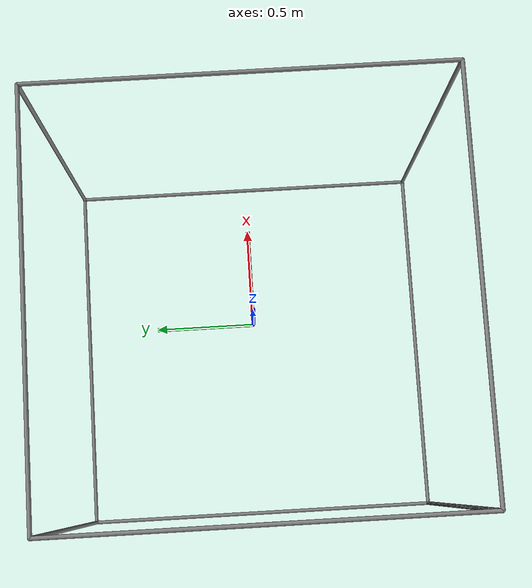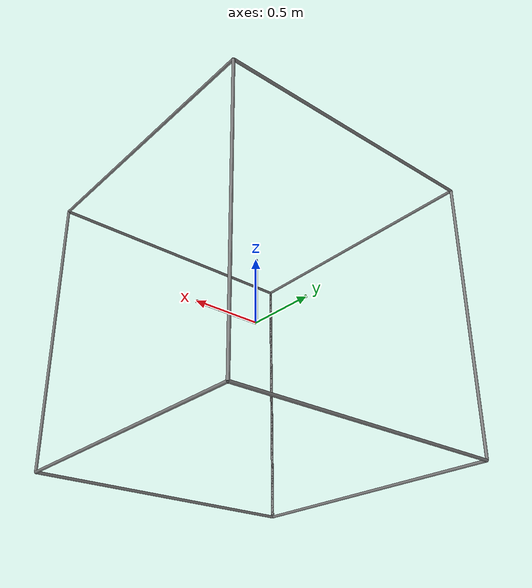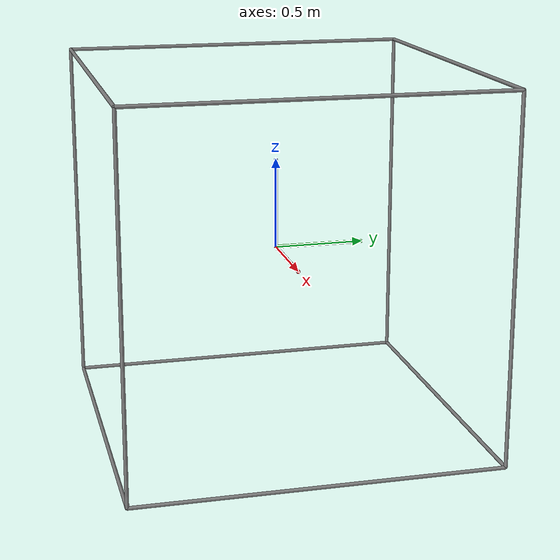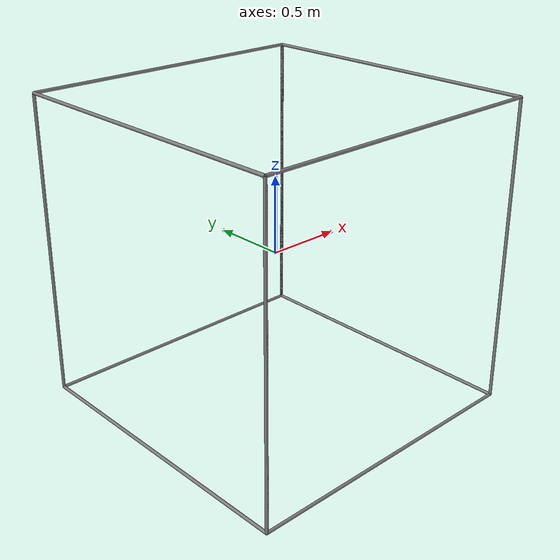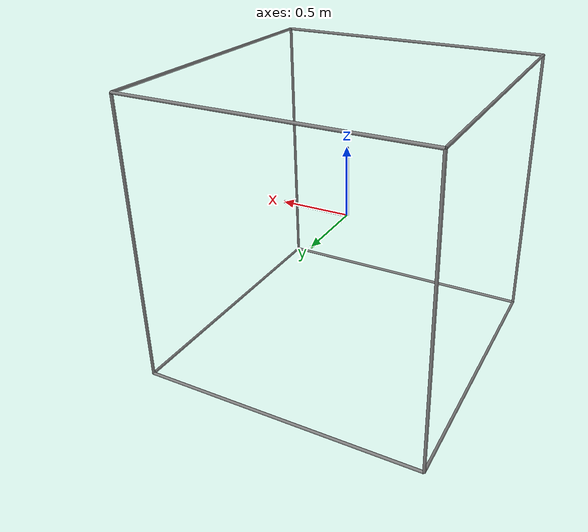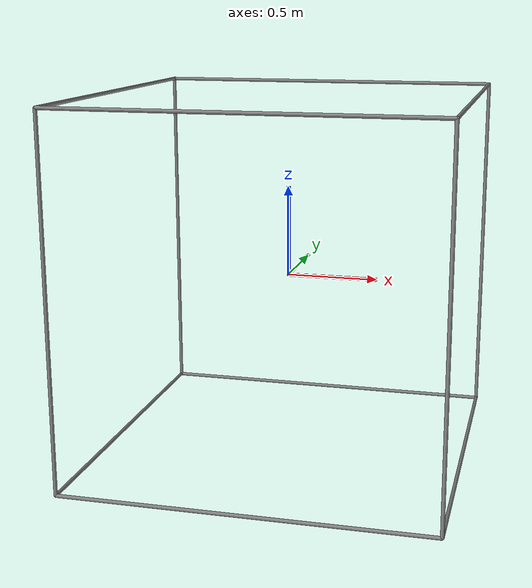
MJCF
<mujoco model="Static Cylinders">
  <worldbody>
    <!-- coordinate frame -->
    <geom name="xaxis" type="cylinder" size="0.01" fromto="0 0 0 .5 0 0" rgba="1 0 0 1"/>
    <geom name="yaxis" type="cylinder" size="0.01" fromto="0 0 0 0 .5 0" rgba="0 1 0 1"/>
    <geom name="zaxis" type="cylinder" size="0.01" fromto="0 0 0 0 0 .5" rgba="0 0 1 1"/>

    <!-- bottom face -->
    <geom type="cylinder" size="0.01" fromto="-1 -1 -1 1 -1 -1"/>
    <geom type="cylinder" size="0.01" fromto="1 -1 -1 1 1 -1"/>
    <geom type="cylinder" size="0.01" fromto="1 1 -1 -1 1 -1"/>
    <geom type="cylinder" size="0.01" fromto="-1 1 -1 -1 -1 -1"/>

    <!-- front face -->
    <geom type="cylinder" size="0.01" fromto="-1 1 -1 -1 1 1"/>
    <geom type="cylinder" size="0.01" fromto="-1 1 1 1 1 1"/>
    <geom type="cylinder" size="0.01" fromto="1 1 1 1 1 -1"/>
    <geom type="cylinder" size="0.01" fromto="1 1 -1 -1 1 -1"/>

    <!-- left face -->
    <geom type="cylinder" size="0.01" fromto="-1 1 -1 -1 1 1"/>
    <geom type="cylinder" size="0.01" fromto="-1 1 1 -1 -1 1"/>
    <geom type="cylinder" size="0.01" fromto="-1 -1 1 -1 -1 -1"/>
    <geom type="cylinder" size="0.01" fromto="-1 -1 -1 -1 1 -1"/>

    <!-- back face -->
    <geom type="cylinder" size="0.01" fromto="-1 -1 -1 -1 -1 1"/>
    <geom type="cylinder" size="0.01" fromto="-1 -1 1 1 -1 1"/>
    <geom type="cylinder" size="0.01" fromto="1 -1 1 1 -1 -1"/>
    <geom type="cylinder" size="0.01" fromto="1 -1 -1 -1 -1 -1"/>

    <!-- right face -->
    <geom type="cylinder" size="0.01" fromto="1 -1 -1 1 1 -1"/>
    <geom type="cylinder" size="0.01" fromto="1 1 -1 1 1 1"/>
    <geom type="cylinder" size="0.01" fromto="1 1 1 1 -1 1"/>
    <geom type="cylinder" size="0.01" fromto="1 -1 1 1 -1 -1"/>

    <!-- top face -->
    <geom type="cylinder" size="0.01" fromto="-1 1 1 -1 -1 1"/>
    <geom type="cylinder" size="0.01" fromto="-1 -1 1 1 -1 1"/>
    <geom type="cylinder" size="0.01" fromto="1 -1 1 1 1 1"/>
    <geom type="cylinder" size="0.01" fromto="1 1 1 -1 1 1"/>
  </worldbody>
</mujoco>
